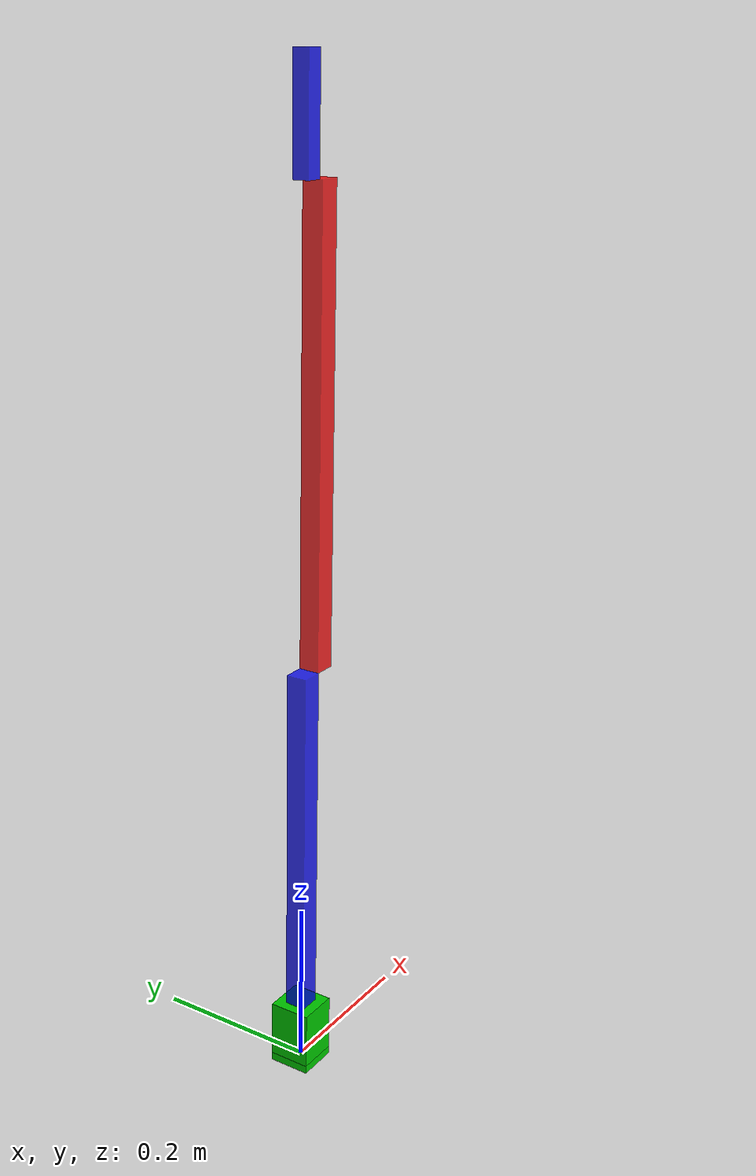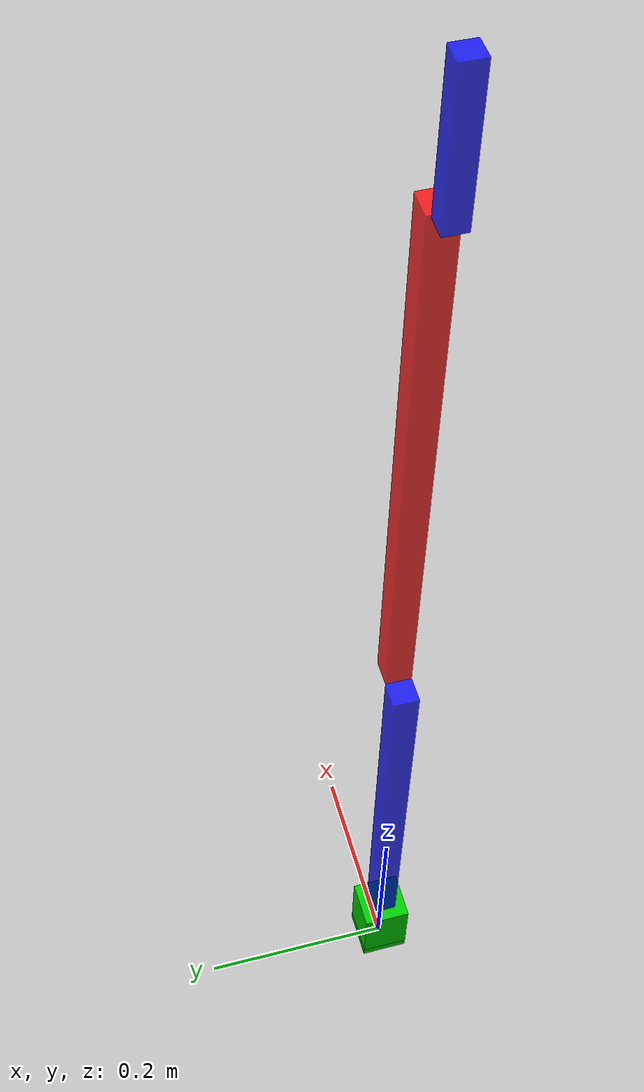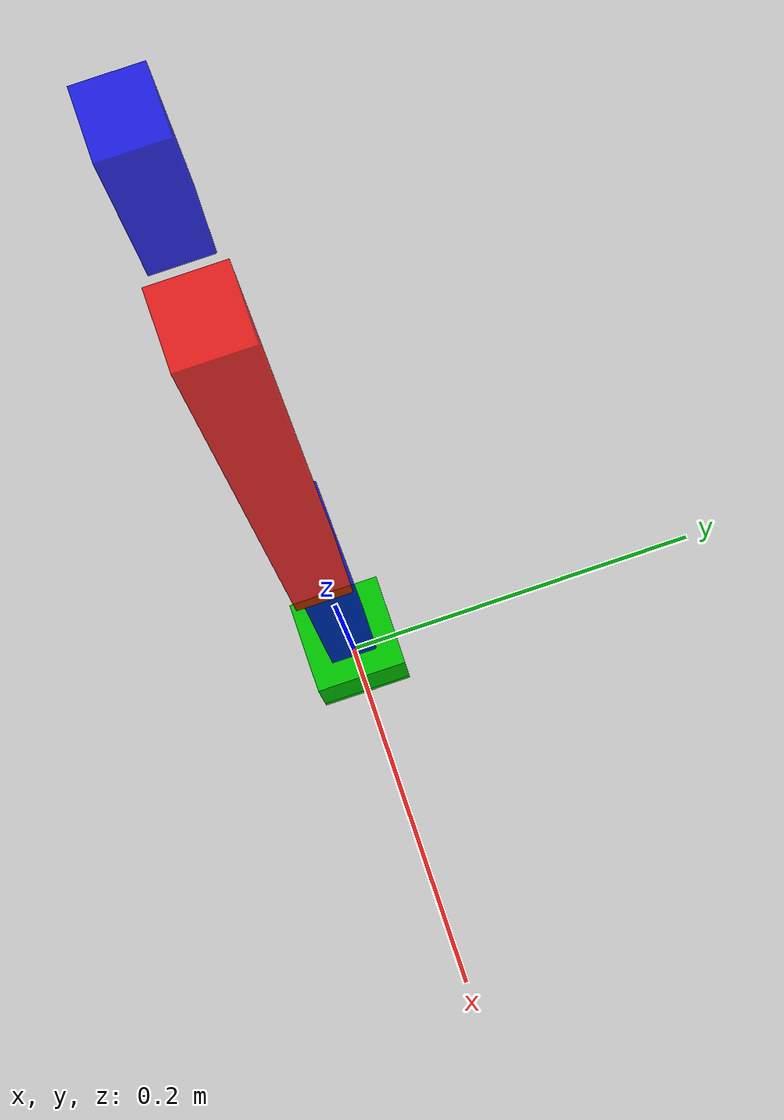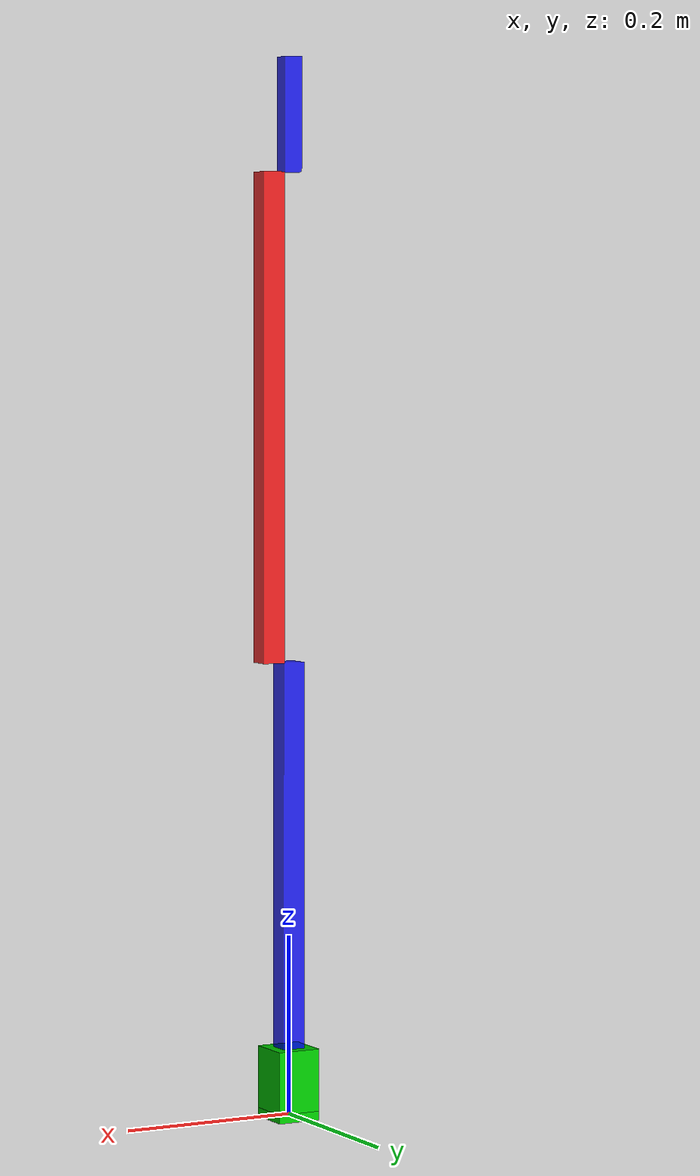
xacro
<?xml version="1.0" ?>

<robot name="arm" xmlns:xacro="http://www.ros.org/wiki/xacro">

            <!-- Materials -->
<material name="green">
<color rgba="0 0.8 0 1"/>
</material>

<material name="red">
<color rgba="1 0 0 0.8"/>
</material>

<material name="blue">
<color rgba="0 0 1 0.8"/>
</material>

            <!-- Use world link for fixing the robot-->
<link name="world"/>
    <inertial>
        <mass value = "0.00001" />
        <origin rpy ="0 0 0" xyz ="0 0 0" />
        <inertia ixx = "0.0" ixy = "0.0" ixz = "0.0" iyy = "0.0" iyz = "0.0" izz = "0.0" />
    </inertial>

  <joint name="fixed" type="fixed">
    <parent link="world"/>
    <child link="arm_base_bottom"/>
  </joint>

            <!-- Base Bottom Link -->
<link name="arm_base_bottom">

    <inertial>
        <mass value = "0.00001" />
        <origin rpy ="0 0 0" xyz ="0 0 0" />
        <inertia ixx = "0.00" ixy = "0.00" ixz = "0.00" iyy = "0.00" iyz = "0.00" izz = "0.00" />
    </inertial>

    <visual>
        <origin rpy="0 0 0" xyz="0 0 0"/>
            <geometry>
                <box size="0.05 0.05 0.01"/>
            </geometry>
            <material name="green"/>
    </visual>

</link>

        <!-- Base Bottom to Base Joint -->

<joint name="base_joint" type="revolute">
    <parent link="arm_base_bottom"/>
        <child link="arm_base"/>
        <origin xyz="0 0 0.005" rpy="0 0 0"/>
        <limit lower="-3.14159" upper="3.14159" effort="5.4917" velocity="0.5"/>
    <axis xyz="0 0 1"/>
</joint>

<transmission name = "trans_bottom_base">
    <type>transmission_interface/SimpleTransmission</type>
    <joint name="base_joint">
        <hardwareInterface>hardware_interface/EffortJointInterface</hardwareInterface>
    </joint>
    <actuator name="motor_base_joint">
        <hardwareInterface>hardware_interface/EffortJointInterface</hardwareInterface>
        <mechanicalReduction>1</mechanicalReduction>
    </actuator>
</transmission>

            <!-- Arm Base Link -->

<link name="arm_base">
    <inertial>
        <mass value = "0.1" />
        <origin rpy ="0 0 0" xyz ="0 0 0.035" />
        <inertia ixx = "0.01" ixy = "0.01" ixz = "0.01" iyy = "0.01" iyz = "0.01" izz = "0.01" />
    </inertial>

    <visual>
        <origin rpy="0 0 0" xyz="0 0 0.035"/>
            <geometry>
                <box size="0.05 0.05 0.07"/>
            </geometry>
            <material name="green"/>
    </visual>
</link>

        <!-- Base to Lower Joint-->

<joint name="base_lower_joint" type="revolute">
    <parent link="arm_base"/>
        <child link="arm_lower"/>
        <origin xyz="0 0 0.07" rpy="0 0 0"/>
        <limit lower="-1.57" upper="1.57" effort="5.4917" velocity="0.5"/>
    <axis xyz="1 0 0"/>
</joint>

<transmission name = "trans_base_lower">
    <type>transmission_interface/SimpleTransmission</type>
    <joint name="base_lower_joint">
        <hardwareInterface>hardware_interface/EffortJointInterface</hardwareInterface>
    </joint>
    <actuator name="motor_base_lower_joint">
        <hardwareInterface>hardware_interface/EffortJointInterface</hardwareInterface>
        <mechanicalReduction>1</mechanicalReduction>
    </actuator>
</transmission>

            <!-- Arm Lower Link -->

<link name="arm_lower">
    <inertial>
        <mass value = "0.1" />
        <origin rpy ="0 0 0" xyz ="0 0 0.216" />
        <inertia ixx = "0.01" ixy = "0.01" ixz = "0.01" iyy = "0.01" iyz = "0.01" izz = "0.01" />
    </inertial>

    <collision>
        <origin rpy="0 0 0" xyz="0 0 0.216"/>
            <geometry>
                <box size="0.0254 0.0254  0.432"/>
            </geometry>
    </collision>

    <visual>
        <origin rpy="0 0 0" xyz="0 0 0.216"/>
            <geometry>
                <box size="0.0254 0.0254  0.432"/>
            </geometry>
            <material name="blue"/>
    </visual>
</link>

          <!-- Lower to Upper Joint -->

<joint name="lower_upper_joint" type="revolute">
    <parent link="arm_lower"/>
        <child link="arm_upper"/>
        <origin xyz="0 0 0.432" rpy="0 0 0"/>
        <limit lower="-3.14159" upper="3.14159" effort="5.4917" velocity="0.5"/>
    <axis xyz="1 0 0"/>
</joint>

<transmission name = "trans_lower_upper">
    <type>transmission_interface/SimpleTransmission</type>
    <joint name="lower_upper_joint">
        <hardwareInterface>hardware_interface/EffortJointInterface</hardwareInterface>
    </joint>
    <actuator name="motor_lower_upper_joint">
        <hardwareInterface>hardware_interface/EffortJointInterface</hardwareInterface>
        <mechanicalReduction>1</mechanicalReduction>
    </actuator>
</transmission>

            <!-- Arm Upper Link -->

<link name="arm_upper">

    <inertial>
        <mass value = "0.1" />
        <origin rpy ="0 0 0" xyz ="0.0252 0 0.27" />
        <inertia ixx = "0.01" ixy = "0.01" ixz = "0.01" iyy = "0.01" iyz = "0.01" izz = "0.01" />
    </inertial>

    <collision>
        <origin rpy="0 0 0" xyz="0.0252 0 0.27"/>
            <geometry>
                <box size="0.0254 0.0254 0.54"/>
            </geometry>
    </collision>

    <visual>
        <origin rpy="0 0 0" xyz="0.0252 0 0.27"/>
            <geometry>
                <box size="0.0254 0.0254 0.54"/>
            </geometry>
            <material name="red"/>
    </visual>
</link>

            <!-- Upper to Pointer Joint -->

<joint name="upper_pointer_joint" type="revolute">
    <parent link="arm_upper"/>
        <child link="pointer"/>
        <origin xyz="0 0 0.54" rpy="0 0 0"/>
        <limit lower="-3.14159" upper="3.14159" effort="5.4917" velocity="0.5"/>
    <axis xyz="1 0 0"/>
</joint>

<transmission name = "trans_upper_pointer">
    <type>transmission_interface/SimpleTransmission</type>
    <joint name="upper_pointer_joint">
        <hardwareInterface>hardware_interface/EffortJointInterface</hardwareInterface>
    </joint>
    <actuator name="motor_upper_pointer_joint">
        <hardwareInterface>hardware_interface/EffortJointInterface</hardwareInterface>
        <mechanicalReduction>1</mechanicalReduction>
    </actuator>
</transmission>

            <!-- Pointer Link -->

<link name="pointer">

    <inertial>
        <mass value = "0.1" />
        <origin rpy ="0 0 0" xyz ="0 0 0.063" />
        <inertia ixx = "0.01" ixy = "0.01" ixz = "0.01" iyy = "0.01" iyz = "0.01" izz = "0.01" />
    </inertial>

    <collision>
        <origin rpy="0 0 0" xyz="0 0 0.063"/>
            <geometry>
                <box size="0.02 0.02 0.126"/>
            </geometry>
    </collision>

    <visual>
        <origin rpy="0 0 0" xyz="0 0 0.063"/>
            <geometry>
                <box size="0.02 0.02 0.126"/>
            </geometry>
            <material name="blue"/>
    </visual>
</link>

<gazebo>
    <plugin name="gazebo_ros_control" filename="libgazebo_ros_control.so">
    </plugin>
</gazebo>

</robot>
